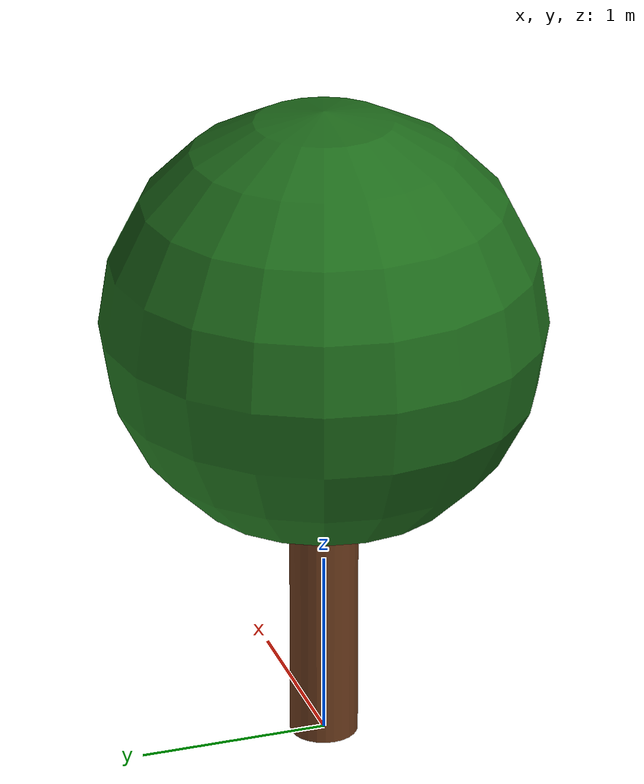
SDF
<?xml version="1.0"?>
<sdf version="1.6">
  <model name="orchard_tree">
    <static>true</static>
    <link name="trunk">
      <pose>0 0 1.0 0 0 0</pose>
      <collision name="collision">
        <geometry>
          <cylinder>
            <radius>0.18</radius>
            <length>2.0</length>
          </cylinder>
        </geometry>
      </collision>
      <visual name="visual">
        <geometry>
          <cylinder>
            <radius>0.18</radius>
            <length>2.0</length>
          </cylinder>
        </geometry>
        <material>
          <ambient>0.34 0.18 0.08 1</ambient>
          <diffuse>0.42 0.23 0.11 1</diffuse>
        </material>
      </visual>
    </link>
    <link name="crown_main">
      <pose>0 0 2.35 0 0 0</pose>
      <collision name="collision">
        <geometry>
          <sphere>
            <radius>1.15</radius>
          </sphere>
        </geometry>
      </collision>
      <visual name="visual">
        <geometry>
          <sphere>
            <radius>1.15</radius>
          </sphere>
        </geometry>
        <material>
          <ambient>0.08 0.30 0.08 1</ambient>
          <diffuse>0.12 0.43 0.11 1</diffuse>
        </material>
      </visual>
    </link>
    <link name="crown_offset">
      <pose>0.42 -0.25 2.2 0 0 0</pose>
      <visual name="visual">
        <geometry>
          <sphere>
            <radius>0.78</radius>
          </sphere>
        </geometry>
        <material>
          <ambient>0.05 0.24 0.07 1</ambient>
          <diffuse>0.09 0.36 0.10 1</diffuse>
        </material>
      </visual>
    </link>
  </model>
</sdf>
